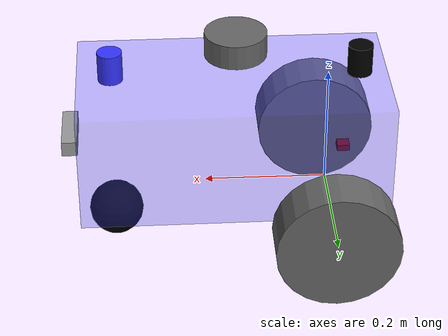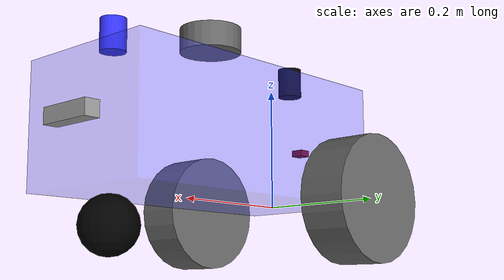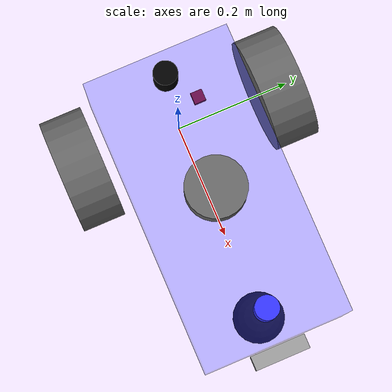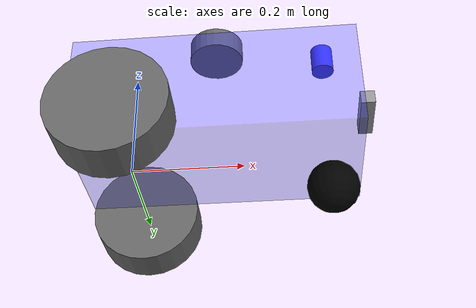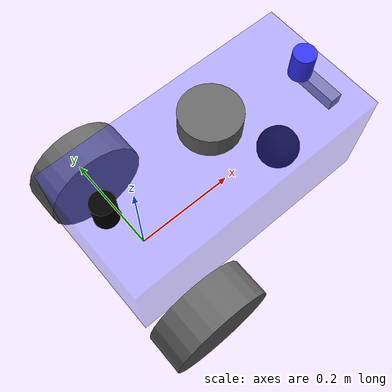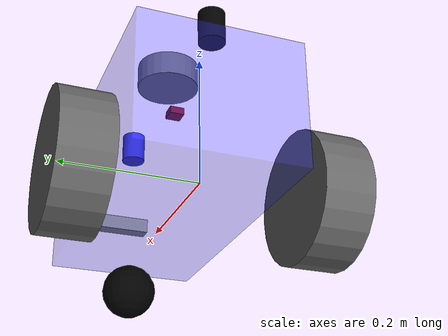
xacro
<?xml version="1.0"?>
<robot name="hoverboard_robot" xmlns:xacro="http://ros.org/wiki/xacro">

    <xacro:include filename="materials.xacro" />
    <xacro:include filename="macros.xacro" />
    <xacro:include filename="wheels.xacro" />
    <xacro:include filename="ros2_control.xacro" />
    <xacro:include filename="lidar.xacro" />
    <xacro:include filename="realsense.xacro" />
    <xacro:include filename="gps.xacro" />
    <xacro:include filename="imu.xacro" />

    <xacro:property name="plate_length" value="0.5" />
    <xacro:property name="plate_width" value="0.25" />
    <xacro:property name="plate_height" value="0.2" />

    <xacro:property name="chassis_weight" value="10.0" />

    <xacro:property name="driving_wheel_diameter" value="0.2" />
    <xacro:property name="driving_wheel_thickness" value="0.075" />
    <xacro:property name="driving_wheel_weight" value="2.2" />

    <xacro:property name="caster_wheel_diameter" value="0.09" />
    <xacro:property name="caster_wheel_weight" value="0.1" />

    <link name="base_link">
    </link>

    <link name="plate">
        <visual>
            <origin xyz="${plate_length/2} 0 ${plate_height/2}"/>
            <geometry>
                <box size="${plate_length} ${plate_width} ${plate_height}"/>
            </geometry>
            <material name="blueclear"/>
        </visual>
        <collision>
            <origin xyz="${plate_length/2} 0 ${plate_height/2}"/>
            <geometry>
                <box size="${plate_length} ${plate_width} ${plate_height}"/>
            </geometry>
        </collision>
        <xacro:box_inertia mass="${chassis_weight}" x="${plate_length}" y="${plate_width}" z="${plate_height}">
            <origin xyz="${plate_length/2} 0 ${plate_height/2}" rpy="0.0 0.0 0.0"/>
        </xacro:box_inertia>
    </link>

    <joint name="base_link_plate_joint" type="fixed">
        <origin xyz="-0.095 0 0"/>
        <parent link="base_link" />
        <child link="plate" />
    </joint>

    <link name="base_footprint">
    </link>

    <joint name="base_footprint_joint" type="fixed">
        <origin xyz="0 0 0"/>
        <parent link="base_footprint" />
        <child link="base_link" />
    </joint>

    <xacro:driving_wheel suffix="left" reflect="1"/>
    <xacro:driving_wheel suffix="right" reflect="-1"/>

    <xacro:caster_wheel suffix="back" reflect="1" />

    <xacro:hoverboard_ros2_control name="Hoverboard" />

</robot>

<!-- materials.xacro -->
<robot xmlns:xacro="http://ros.org/wiki/xacro">

    <material name="silver">
        <color rgba="0.60 0.60 0.60 1"/>
    </material>

    <material name="gray">
        <color rgba="0.40 0.40 0.40 1"/>
    </material>

    <material name="black">
        <color rgba="0 0 0 1"/>
    </material>

    <material name="green">
        <color rgba="0 0.5 0 1" />
    </material>

    <material name="red">
        <color rgba="0.5 0 0 1" />
    </material>

    <material name="blue">
        <color rgba="0.2 0.2 1 1" />
    </material>

    <material name="white">
        <color rgba="1 1 1 1" />
    </material>
    <material name="blueclear">
        <color rgba="0.2 0.2 1 0.3" />
    </material>

</robot>

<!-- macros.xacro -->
<robot xmlns:xacro="http://ros.org/wiki/xacro">

    <xacro:macro name="default_inertial" params="mass">
        <inertial>
            <mass value="${mass}" />
            <inertia ixx="1e-3" ixy="0.0" ixz="0.0" iyy="1e-3" iyz="0.0" izz="1e-3"/>
        </inertial>
    </xacro:macro>

    <!-- Define some commonly used intertial properties  -->
    <xacro:macro name="box_inertia" params="mass x y z *origin">
        <inertial>
            <xacro:insert_block name="origin"/>
            <mass value="${mass}" />
            <inertia ixx="${(1/12) * mass * (y*y+z*z)}" ixy="0.0" ixz="0.0"
                    iyy="${(1/12) * mass * (x*x+z*z)}" iyz="0.0"
                    izz="${(1/12) * mass * (x*x+y*y)}" />
        </inertial>
    </xacro:macro>

    <xacro:macro name="cylinder_inertia" params="m r h roll">
        <inertial>
            <origin xyz="0 0 0" rpy="${roll} 0 0" />
            <mass value="${m}"/>
            <inertia ixx="${(m/12) * (3*r*r + h*h)}" ixy = "0" ixz = "0" iyy="${(m/12) * (3*r*r + h*h)}" iyz = "0" izz="${(m/2) * (r*r)}"/>
        </inertial>
    </xacro:macro>

    <xacro:macro name="sphere_inertia" params="m r">
        <inertial>
            <mass value="${m}"/>
            <inertia ixx="${(2/5) * m * (r*r)}" ixy="0.0" ixz="0.0" iyy="${(2/5) * m * (r*r)}" iyz="0.0" izz="${(2/5) * m * (r*r)}"/>
        </inertial>
    </xacro:macro>

</robot>

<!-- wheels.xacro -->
<robot xmlns:xacro="http://ros.org/wiki/xacro">

    <!-- TODO: The model is made in a very simple form, it would be nice to make it a bit better. Is someone willing? -->
    <xacro:macro name="driving_wheel" params="suffix reflect">
        <link name="driving_wheel_${suffix}">
            <visual>
                <origin xyz="0 0 0" rpy="${pi/2} 0 0" />
                <geometry>
                    <cylinder radius="${driving_wheel_diameter/2}" length="${driving_wheel_thickness}"/>
                </geometry>
                <material name="gray"/>
            </visual>
            <collision>
                <origin xyz="0 0 0" rpy="${pi/2} 0 0" />
                <contact_coefficients mu="100.0" kp="0.0" kd="0.0" />
                <geometry>
                    <cylinder radius="${driving_wheel_diameter/2}" length="${driving_wheel_thickness}"/>
                </geometry>
            </collision>
            <xacro:cylinder_inertia m="${driving_wheel_weight}" r="${driving_wheel_diameter/2}" h="${driving_wheel_thickness}" roll="${pi/2}"/>
        </link>

        <joint name="driving_wheel_${suffix}_joint" type="continuous">
            <axis xyz="0 1 0" rpy="0 0 0" />
            <parent link="base_link"/>
            <child link="driving_wheel_${suffix}"/>
            <origin xyz="0 ${0.18*reflect} 0.0" rpy="0 0 0"/>
        </joint>

        <gazebo reference="driving_wheel_${suffix}">
            <mu1 value="0.50"/>
            <mu2 value="3.0"/>
            <kp value="10000000.0" />
            <kd value="100.0" />
            <fdir1 value="0 0 1"/>
            <material>Gazebo/Black</material>
        </gazebo>

    </xacro:macro>

    <xacro:macro name="caster_wheel" params="suffix reflect">
        <link name="caster_wheel_${suffix}">
            <visual>
                <origin xyz="0 0 0" rpy="0 0 0" />
                <geometry>
                    <sphere radius="${caster_wheel_diameter/2}" />
                </geometry>
                <material name="black"/>
            </visual>
            <collision>
                <origin xyz="0 0 0" rpy="0 0 0" />
                <contact_coefficients mu="0.0" kp="0.0" kd="0.0" />
                <geometry>
                    <sphere radius="${caster_wheel_diameter/2}" />
                </geometry>
            </collision>
            <xacro:sphere_inertia m="${caster_wheel_weight}" r="${caster_wheel_diameter/2}"/>
        </link>

        <joint name="caster_wheel_${suffix}_joint" type="fixed">
            <parent link="base_link"/>
            <child link="caster_wheel_${suffix}"/>
            <origin xyz="0.35 0 -0.05" rpy="0 0 0"/>
        </joint>

        <gazebo reference="caster_wheel_${suffix}">
            <mu1 value="0.0"/>
            <mu2 value="0.0"/>
            <kp value="10000000.0" />
            <kd value="100.0" />
            <fdir1 value="0 0 1"/>
            <material>Gazebo/Red</material>
        </gazebo>

    </xacro:macro>

</robot>

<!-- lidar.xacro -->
<robot name="hoverboard_robot" xmlns:xacro="http://ros.org/wiki/xacro">

    <joint name="laser_joint" type="fixed">
        <parent link="base_link"/>
        <child link="laser"/>
        <origin xyz="0.15 0 0.26" rpy="0 0 ${pi}"/>
    </joint>

    <link name="laser">

        <visual>
            <geometry>
                <cylinder radius="0.05" length="0.04"/>
            </geometry>
            <material name="gray"/>
        </visual>
        <collision>
            <contact_coefficients mu="100.0" kp="0.0" kd="0.0" />
            <geometry>
                <cylinder radius="0.05" length="0.04"/>
            </geometry>
        </collision>
    </link>

</robot>

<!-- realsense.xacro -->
<robot name="hoverboard_robot" xmlns:xacro="http://ros.org/wiki/xacro">

    <!--
        Front-mounted Intel RealSense D455. The realsense2_camera defaults
        publish the optical/depth frames under camera_link.
    -->
    <joint name="camera_joint" type="fixed">
        <parent link="base_link"/>
        <child link="camera_link"/>
        <origin xyz="0.42 0 0.1" rpy="0 0 0"/>
    </joint>

    <link name="camera_link">
        <visual>
            <origin xyz="0 0 0"/>
            <geometry>
                <box size="0.025 0.095 0.025"/>
            </geometry>
            <material name="silver"/>
        </visual>
        <collision>
            <contact_coefficients mu="100.0" kp="0.0" kd="0.0" />
            <geometry>
                <box size="0.025 0.095 0.025"/>
            </geometry>
        </collision>
    </link>

</robot>

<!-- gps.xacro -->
<robot name="hoverboard_robot" xmlns:xacro="http://ros.org/wiki/xacro">

    <!--
        /dev/boxbot/gps_rover antenna. This is the position source used by
        navsat_transform. It sits 5 cm behind the diff-drive axle center.
    -->
    <joint name="gps_joint" type="fixed">
        <parent link="base_link"/>
        <child link="gps"/>
        <origin xyz="-0.05 0 0.225" rpy="0 0 0"/>
    </joint>

    <link name="gps">

        <visual>
            <geometry>
                <cylinder radius="0.02" length="0.05"/>
            </geometry>
            <material name="black"/>
        </visual>
        <collision>
            <contact_coefficients mu="100.0" kp="0.0" kd="0.0" />
            <geometry>
                <cylinder radius="0.02" length="0.05"/>
            </geometry>
        </collision>
    </link>

    <!--
        /dev/boxbot/gps_moving_base antenna. This receiver is only used to form
        the moving-baseline heading; it is 40 cm in front of the rover antenna.
    -->
    <joint name="gps_moving_base_joint" type="fixed">
        <parent link="base_link"/>
        <child link="gps_moving_base"/>
        <origin xyz="0.35 0 0.225" rpy="0 0 0"/>
    </joint>

    <link name="gps_moving_base">
        <visual>
            <geometry>
                <cylinder radius="0.02" length="0.05"/>
            </geometry>
            <material name="blue"/>
        </visual>
        <collision>
            <contact_coefficients mu="100.0" kp="0.0" kd="0.0" />
            <geometry>
                <cylinder radius="0.02" length="0.05"/>
            </geometry>
        </collision>
    </link>

</robot>

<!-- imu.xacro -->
<robot name="hoverboard_robot" xmlns:xacro="http://ros.org/wiki/xacro">

    <joint name="imu_link_joint" type="fixed">
        <parent link="base_link"/>
        <child link="imu_link"/>
        <!-- BNO085 mounted REP-103 aligned: x forward, y left, z up. -->
        <origin xyz="-0.022 0.045 0.09" rpy="0 0 0"/>
    </joint>

    <link name="imu_link">

        <visual>
            <geometry>
                <box size="0.02 0.02 0.01"/>
            </geometry>
            <material name="red"/>
        </visual>
        <collision>
            <contact_coefficients mu="100.0" kp="0.0" kd="0.0" />
            <geometry>
                <box size="0.02 0.02 0.01"/>
            </geometry>
        </collision>
    </link>

</robot>
